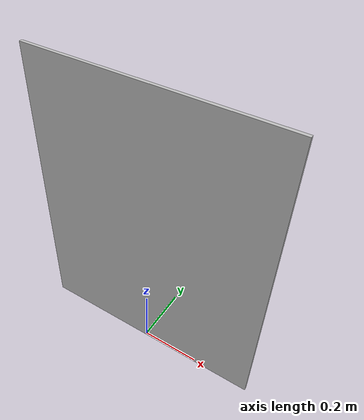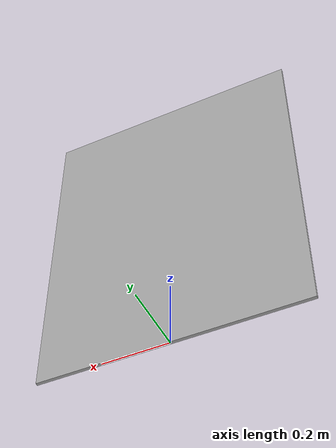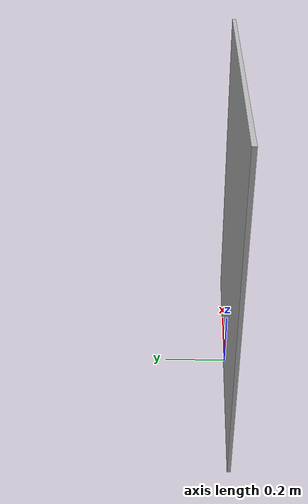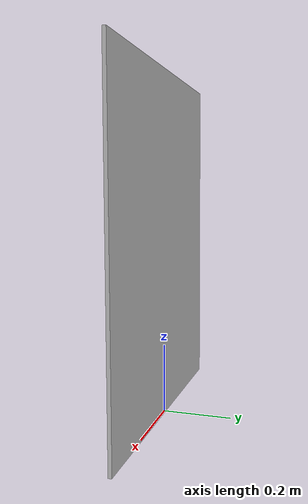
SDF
<?xml version="1.0"?>
<sdf version="1.6">
  <model name="billboard_person1">
    <static>true</static>
    <link name="link">
      <visual name="vis">
        <pose>0 0 0.5 0 0 0</pose>
        <geometry><box><size>0.8 0.01 1.0</size></box></geometry>
        <material>
          <script>
            <uri>file:///root/mowen_ws/src/mowen_gazebo/models/billboard_person1/materials/textures/person1.png</uri>
            <name>Gazebo/Flat</name>
          </script>
        </material>
      </visual>
      <collision name="coll">
        <geometry><box><size>0.8 0.01 1.0</size></box></geometry>
      </collision>
    </link>
  </model>
</sdf>
